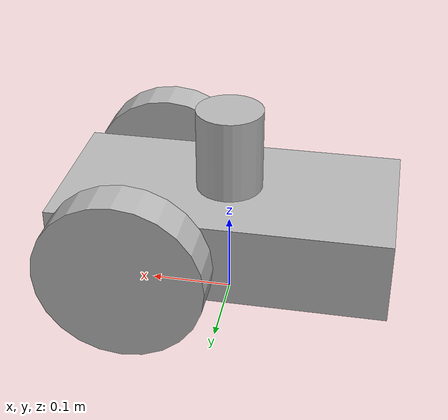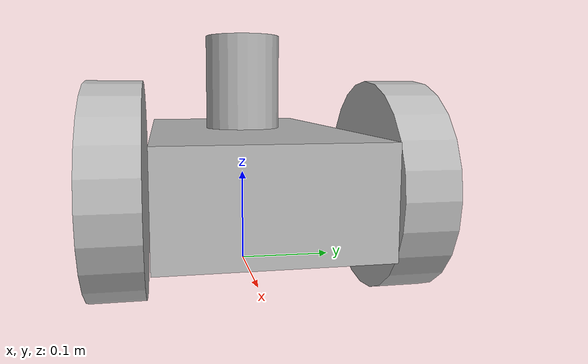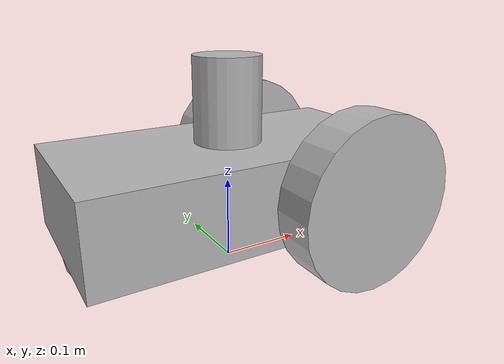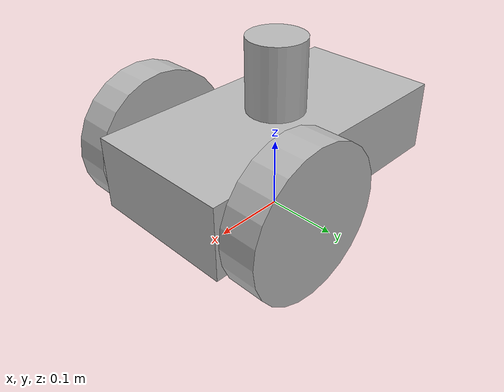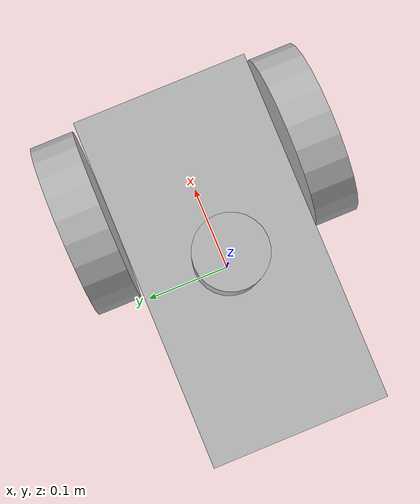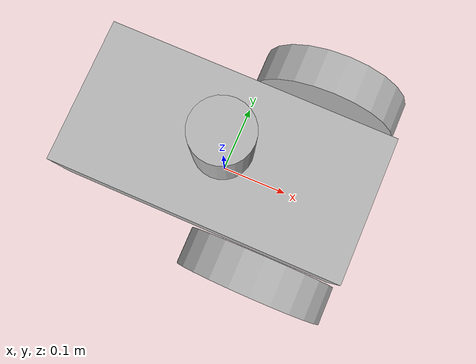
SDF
<?xml version='1.0'?>
<sdf version='1.4'>
  <model name="l1_diff_robot">
    <static>false</static>
    <link name='base_link'>
            <pose>0 0 .1 0 0 0</pose>
            <inertial>
                <inertia>
                  <ixx>0.0833333</ixx>
                  <ixy>0</ixy>
                  <ixz>0</ixz>
                  <iyy>0.2833</iyy>
                  <iyz>0</iyz>
                  <izz>0.3333332</izz>
                </inertia>
                <mass>20.0</mass>
              </inertial>
            <collision name='collision'>
              <geometry>
                <box>
                  <size>.4 .2 .1</size>
                </box>
              </geometry>
            </collision>

            <visual name='visual'>
              <geometry>
                <box>
                  <size>.4 .2 .1</size>
                </box>
              </geometry>
            </visual>
          </link>

          <link name='sensor_laser'>
                  <pose>0 0 0.2 0 0 0</pose>
                  <inertial>
                      <inertia>
                        <ixx>0.002708332</ixx>
                        <ixy>0</ixy>
                        <ixz>0</ixz>
                        <iyy>0.002708332</iyy>
                        <iyz>0</iyz>
                        <izz>0.0002</izz>
                      </inertia>
                      <mass>2.0</mass>
                    </inertial>
                  <collision name='collision'>
                    <geometry>
                      <cylinder>
                        <radius>.04</radius>
                        <length>.1</length>
                      </cylinder>
                    </geometry>
                  </collision>

                  <visual name='visual'>
                    <geometry>
                      <cylinder>
                        <radius>.04</radius>
                        <length>.1</length>
                      </cylinder>
                    </geometry>
                  </visual>
                  <sensor type="ray" name="laser_scan">
                    <pose>0 0 0.03 0 0 0</pose>
                    <visualize>true</visualize>
                    <update_rate>40</update_rate>
                    <ray>
                      <scan>
                        <horizontal>
                          <samples>720</samples>
                          <resolution>1</resolution>
                          <min_angle>-3.14</min_angle>
                          <max_angle>3.14</max_angle>
                        </horizontal>
                      </scan>
                      <range>
                        <min>0.10</min>
                        <max>10.0</max>
                        <resolution>0.01</resolution>
                      </range>
                      <noise>
                        <type>gaussian</type>
                        <mean>0.0</mean>
                        <stddev>0.01</stddev>
                      </noise>
                    </ray>
                    <plugin name="custom_bounding_box_plugin" filename="libgazebo_plugins.so">
                      <topicName>/diff_robot/laser_scan</topicName>
                      <frameName>sensor_laser</frameName>
                    </plugin>
                  </sensor>
                </link>

          <link name="caster">
            <pose> -0.15 0 0.05 0 0 0 </pose>
            <inertial>
                <inertia>
                  <ixx>0.004</ixx>
                  <ixy>0</ixy>
                  <ixz>0</ixz>
                  <iyy>0.004</iyy>
                  <iyz>0</iyz>
                  <izz>0.004</izz>
                </inertia>
                <mass>4.0</mass>
              </inertial>
            <collision name='collision'>
           <geometry>
               <sphere>
               <radius>.05</radius>
             </sphere>
           </geometry>

           <surface>
             <friction>
               <ode>
                 <mu>1</mu>
                 <mu2>1</mu2>
                 <slip1>1.0</slip1>
                 <slip2>1.0</slip2>
               </ode>
             </friction>
           </surface>
         </collision>

         <visual name='visual'>
           <geometry>
             <sphere>
               <radius>.05</radius>
             </sphere>
           </geometry>
         </visual>
     </link>

     <link name="left_wheel">
      <pose>0.1 0.13 0.1 0 1.5707 1.5707</pose>
      <inertial>
          <inertia>
            <ixx>0.002708332</ixx>
            <ixy>0</ixy>
            <ixz>0</ixz>
            <iyy>0.002708332</iyy>
            <iyz>0</iyz>
            <izz>0.005</izz>
          </inertia>
          <mass>1.0</mass>
        </inertial>
      <collision name="collision">
         <geometry>
           <cylinder>
             <radius>.1</radius>
             <length>.05</length>
           </cylinder>
         </geometry>

         <surface>
           <friction>
             <ode>
               <mu>1</mu>
               <mu2>1</mu2>
               <slip1>0</slip1>
               <slip2>0</slip2>
             </ode>
           </friction>
         </surface>
       </collision>
       <visual name="visual">
         <geometry>
           <cylinder>
             <radius>.1</radius>
             <length>.05</length>
           </cylinder>
         </geometry>
       </visual>
     </link>

     <link name="right_wheel">
        <pose>0.1 -0.13 0.1 0 1.5707 1.5707</pose>
        <inertial>
            <inertia>
              <ixx>0.002708332</ixx>
              <ixy>0</ixy>
              <ixz>0</ixz>
              <iyy>0.002708332</iyy>
              <iyz>0</iyz>
              <izz>0.005</izz>
            </inertia>
            <mass>1.0</mass>
          </inertial>
        <collision name="collision">
          <geometry>
            <cylinder>
              <radius>.1</radius>
              <length>.05</length>
            </cylinder>
          </geometry>

          <surface>
            <friction>
              <ode>
                <mu>1</mu>
                <mu2>1</mu2>
                <slip1>0</slip1>
                <slip2>0</slip2>
              </ode>
            </friction>
          </surface>
        </collision>
        <visual name="visual">
          <geometry>
            <cylinder>
              <radius>.1</radius>
              <length>.05</length>
            </cylinder>
          </geometry>
        </visual>
      </link>

      <joint type="revolute" name="left_wheel_hinge">
        <pose>0 0 -0.03 0 0 0</pose>
        <child>left_wheel</child>
        <parent>base_link</parent>
        <axis>
          <xyz>0 1 0</xyz>
        </axis>
      </joint>

      <joint type="revolute" name="right_wheel_hinge">
        <pose>0 0 0.03 0 0 0</pose>
        <child>right_wheel</child>
        <parent>base_link</parent>
        <axis>
          <xyz>0 1 0</xyz>
        </axis>
      </joint>

      <joint type="revolute" name="caster_hinge">
        <pose>0 0 0 0 0 0</pose>
        <child>caster</child>
        <parent>base_link</parent>
        <axis>
          <xyz>0 1 0</xyz>
        </axis>
      </joint>

      <joint type="fixed" name="sensor_link">
        <pose>0 0 0 0 0 0</pose>
        <child>sensor_laser</child>
        <parent>base_link</parent>
      </joint>

      <plugin name="differential_drive_controller" filename="libgazebo_ros_diff_drive.so">
        <alwaysOn>true</alwaysOn>
        <updateRate>20</updateRate>
        <leftJoint>left_wheel_hinge</leftJoint>
        <rightJoint>right_wheel_hinge</rightJoint>
        <wheelSeparation>0.4</wheelSeparation>
        <wheelDiameter>0.1</wheelDiameter>
        <torque>2</torque>
        <commandTopic>cmd_vel</commandTopic>
        <robotBaseFrame>base_link</robotBaseFrame>
        <publishWheelJointState>true</publishWheelJointState>
        <legacyMode>true</legacyMode>
      </plugin>
  </model>
</sdf>
